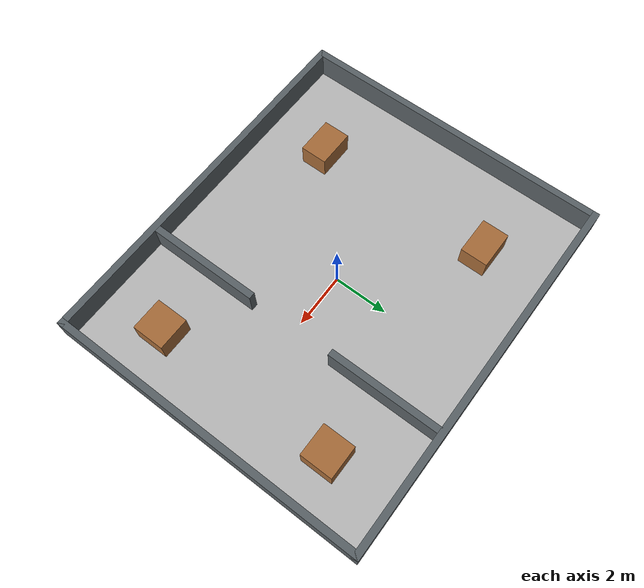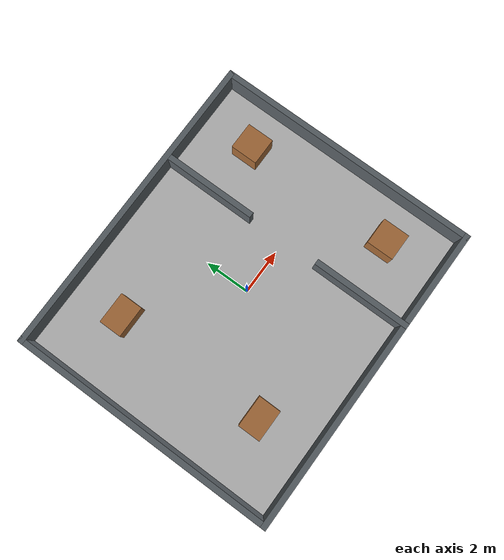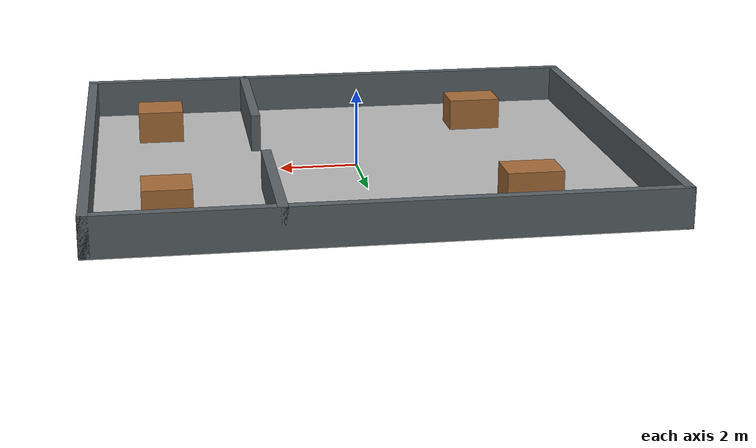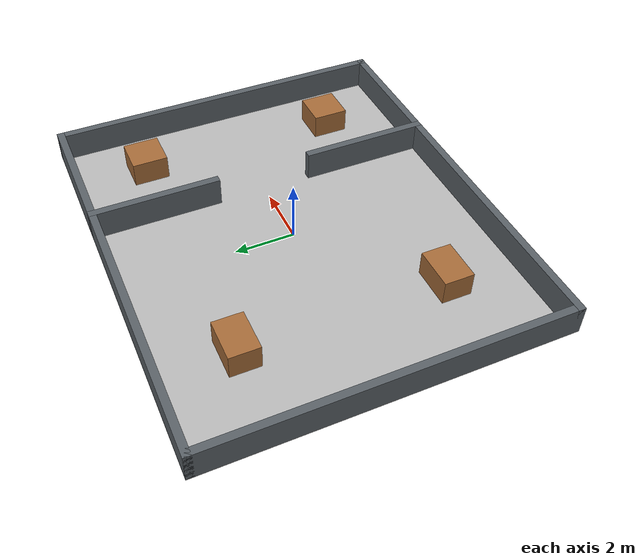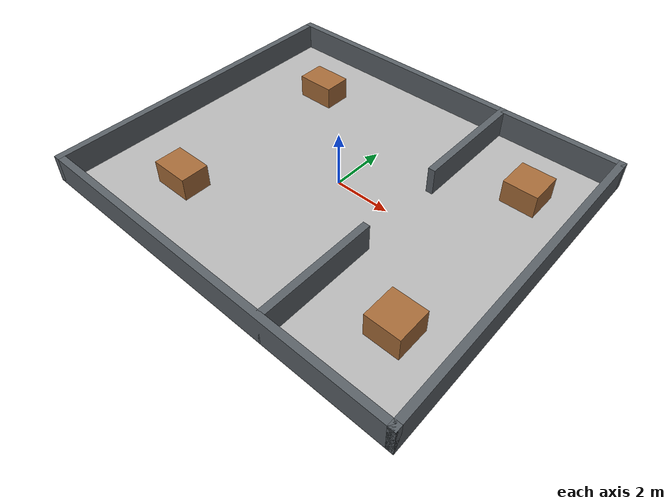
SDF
<?xml version="1.0"?>
<sdf version="1.6">
  <world name="default">
    <gravity>0 0 -9.8</gravity>
    <physics name="default_physics" type="ode">
      <max_step_size>0.002</max_step_size>
      <real_time_factor>1</real_time_factor>
      <real_time_update_rate>500</real_time_update_rate>
    </physics>
    <include><uri>model://sun</uri></include>
    <model name="ground_plane">
      <static>true</static>
      <link name="link">
        <collision name="collision">
          <geometry><box><size>14.000 12.000 0.02</size></box></geometry>
        </collision>
        <visual name="visual">
          <geometry><box><size>14.000 12.000 0.02</size></box></geometry>
          <material>
            <ambient>0.72 0.72 0.72 1</ambient>
            <diffuse>0.72 0.72 0.72 1</diffuse>
          </material>
        </visual>
      </link>
    </model>

    <model name="wall_north">
      <static>true</static>
      <pose>0.000 5.875 0.500 0 0 0</pose>
      <link name="link">
        <collision name="collision">
          <geometry><box><size>14.000 0.250 1.000</size></box></geometry>
        </collision>
        <visual name="visual">
          <geometry><box><size>14.000 0.250 1.000</size></box></geometry>
          <material>
            <ambient>0.35 0.38 0.40 1</ambient>
            <diffuse>0.35 0.38 0.40 1</diffuse>
          </material>
        </visual>
      </link>
    </model>

    <model name="wall_south">
      <static>true</static>
      <pose>0.000 -5.875 0.500 0 0 0</pose>
      <link name="link">
        <collision name="collision">
          <geometry><box><size>14.000 0.250 1.000</size></box></geometry>
        </collision>
        <visual name="visual">
          <geometry><box><size>14.000 0.250 1.000</size></box></geometry>
          <material>
            <ambient>0.35 0.38 0.40 1</ambient>
            <diffuse>0.35 0.38 0.40 1</diffuse>
          </material>
        </visual>
      </link>
    </model>

    <model name="wall_west">
      <static>true</static>
      <pose>-6.875 0.000 0.500 0 0 0</pose>
      <link name="link">
        <collision name="collision">
          <geometry><box><size>0.250 12.000 1.000</size></box></geometry>
        </collision>
        <visual name="visual">
          <geometry><box><size>0.250 12.000 1.000</size></box></geometry>
          <material>
            <ambient>0.35 0.38 0.40 1</ambient>
            <diffuse>0.35 0.38 0.40 1</diffuse>
          </material>
        </visual>
      </link>
    </model>

    <model name="wall_east">
      <static>true</static>
      <pose>6.875 0.000 0.500 0 0 0</pose>
      <link name="link">
        <collision name="collision">
          <geometry><box><size>0.250 12.000 1.000</size></box></geometry>
        </collision>
        <visual name="visual">
          <geometry><box><size>0.250 12.000 1.000</size></box></geometry>
          <material>
            <ambient>0.35 0.38 0.40 1</ambient>
            <diffuse>0.35 0.38 0.40 1</diffuse>
          </material>
        </visual>
      </link>
    </model>

    <model name="divider_north">
      <static>true</static>
      <pose>2.500 3.800 0.500 0 0 0</pose>
      <link name="link">
        <collision name="collision">
          <geometry><box><size>0.250 4.400 1.000</size></box></geometry>
        </collision>
        <visual name="visual">
          <geometry><box><size>0.250 4.400 1.000</size></box></geometry>
          <material>
            <ambient>0.35 0.38 0.40 1</ambient>
            <diffuse>0.35 0.38 0.40 1</diffuse>
          </material>
        </visual>
      </link>
    </model>

    <model name="divider_south">
      <static>true</static>
      <pose>2.500 -3.800 0.500 0 0 0</pose>
      <link name="link">
        <collision name="collision">
          <geometry><box><size>0.250 4.400 1.000</size></box></geometry>
        </collision>
        <visual name="visual">
          <geometry><box><size>0.250 4.400 1.000</size></box></geometry>
          <material>
            <ambient>0.35 0.38 0.40 1</ambient>
            <diffuse>0.35 0.38 0.40 1</diffuse>
          </material>
        </visual>
      </link>
    </model>

    <model name="table_left_north">
      <static>true</static>
      <pose>-3.800 3.400 0.425 0 0 0</pose>
      <link name="link">
        <collision name="collision">
          <geometry><box><size>1.400 1.000 0.850</size></box></geometry>
        </collision>
        <visual name="visual">
          <geometry><box><size>1.400 1.000 0.850</size></box></geometry>
          <material>
            <ambient>0.65 0.42 0.22 1</ambient>
            <diffuse>0.65 0.42 0.22 1</diffuse>
          </material>
        </visual>
      </link>
    </model>

    <model name="table_left_south">
      <static>true</static>
      <pose>-3.800 -3.400 0.425 0 0 0</pose>
      <link name="link">
        <collision name="collision">
          <geometry><box><size>1.400 1.000 0.850</size></box></geometry>
        </collision>
        <visual name="visual">
          <geometry><box><size>1.400 1.000 0.850</size></box></geometry>
          <material>
            <ambient>0.65 0.42 0.22 1</ambient>
            <diffuse>0.65 0.42 0.22 1</diffuse>
          </material>
        </visual>
      </link>
    </model>

    <model name="table_right_north">
      <static>true</static>
      <pose>5.000 3.400 0.425 0 0 0</pose>
      <link name="link">
        <collision name="collision">
          <geometry><box><size>1.200 1.200 0.850</size></box></geometry>
        </collision>
        <visual name="visual">
          <geometry><box><size>1.200 1.200 0.850</size></box></geometry>
          <material>
            <ambient>0.65 0.42 0.22 1</ambient>
            <diffuse>0.65 0.42 0.22 1</diffuse>
          </material>
        </visual>
      </link>
    </model>

    <model name="table_right_south">
      <static>true</static>
      <pose>5.000 -3.400 0.425 0 0 0</pose>
      <link name="link">
        <collision name="collision">
          <geometry><box><size>1.200 1.200 0.850</size></box></geometry>
        </collision>
        <visual name="visual">
          <geometry><box><size>1.200 1.200 0.850</size></box></geometry>
          <material>
            <ambient>0.65 0.42 0.22 1</ambient>
            <diffuse>0.65 0.42 0.22 1</diffuse>
          </material>
        </visual>
      </link>
    </model>
  </world>
</sdf>
